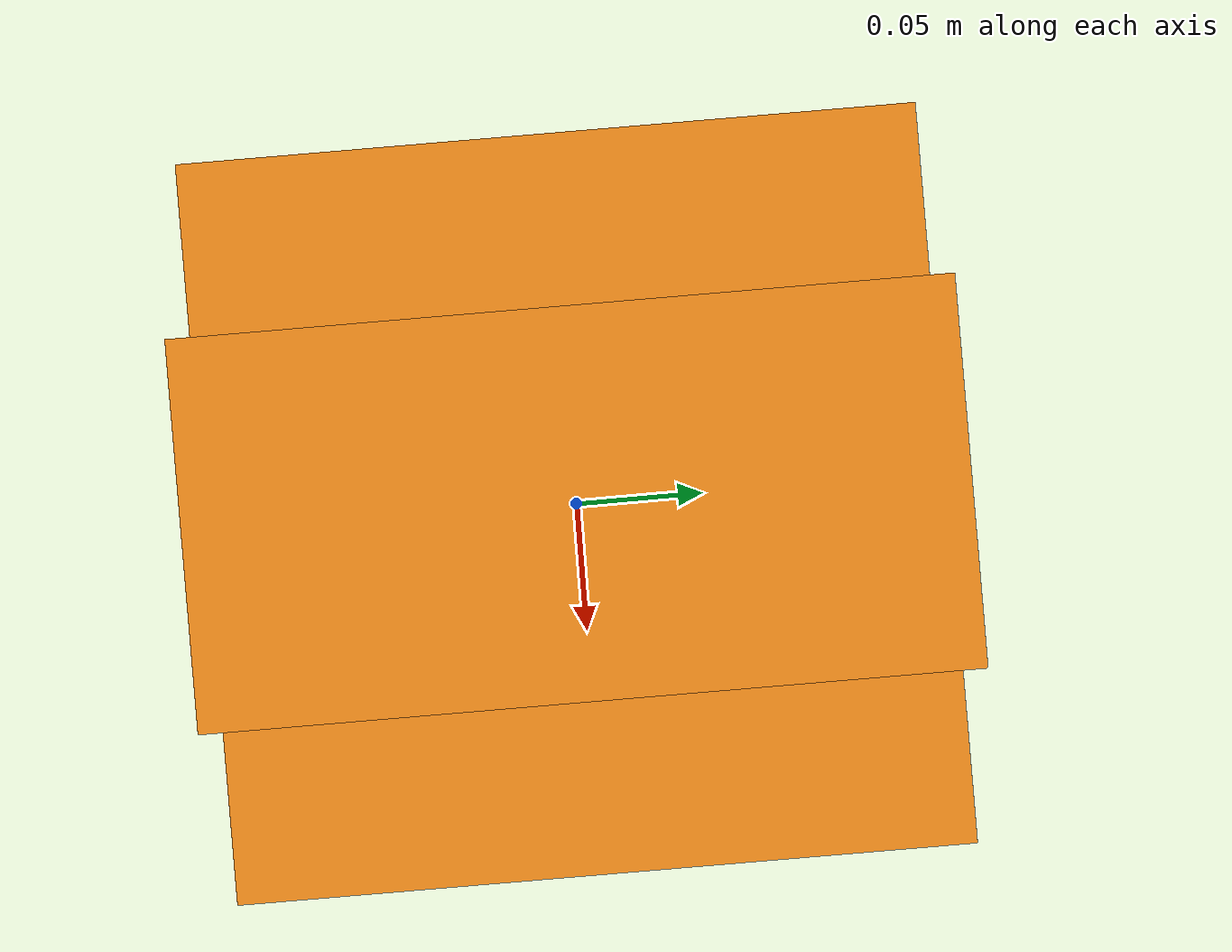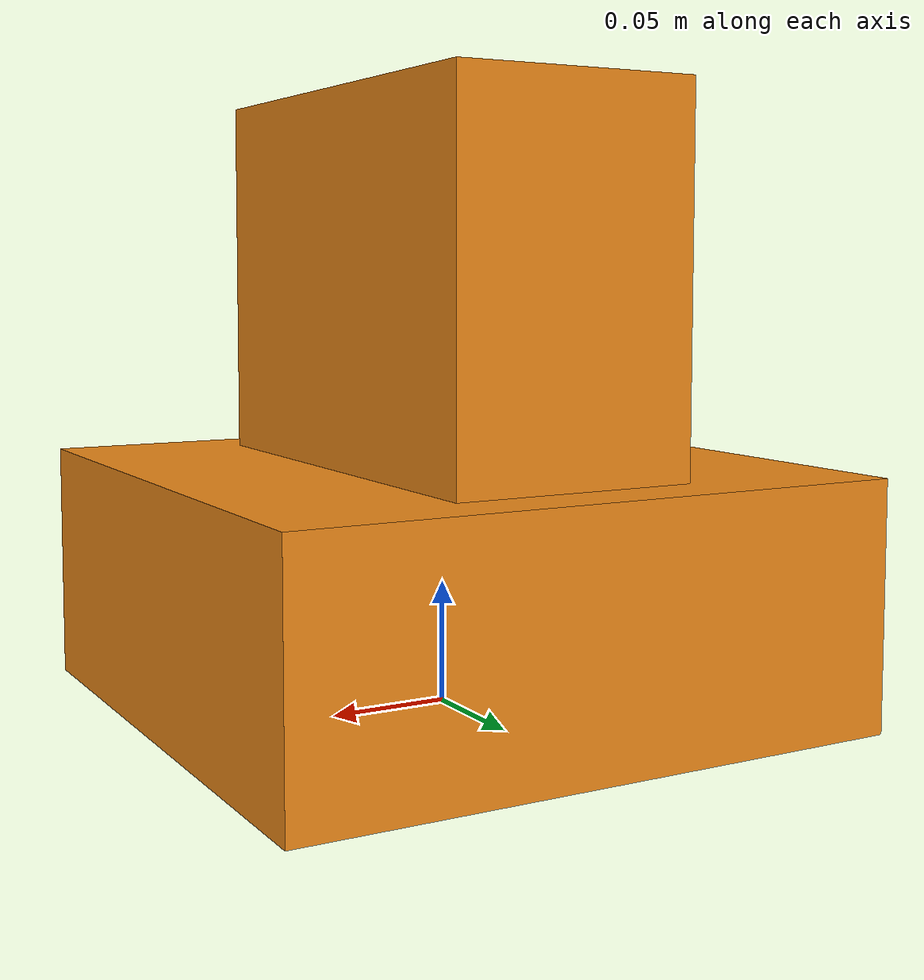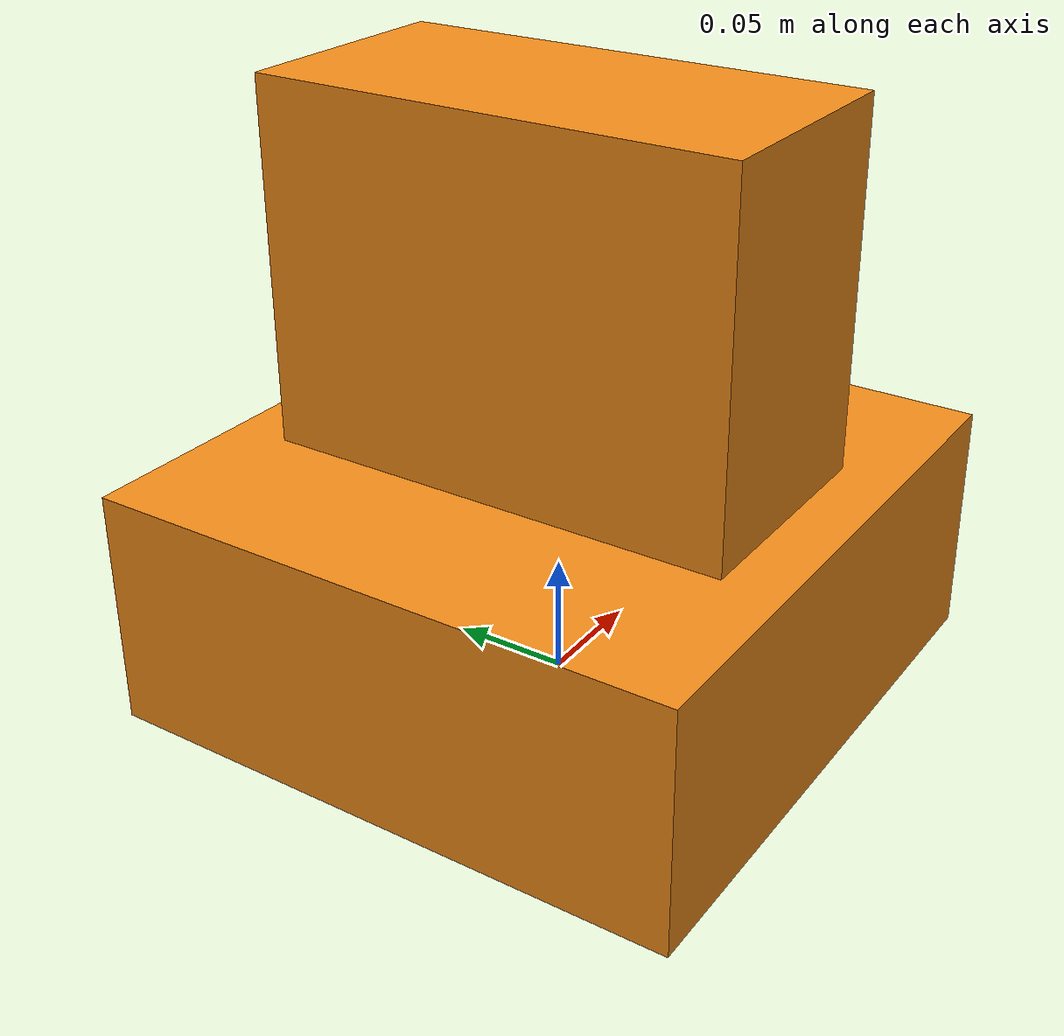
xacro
<?xml version="1.0"?>
<robot name="two_arm_gripper" xmlns:xacro="http://ros.org/wiki/xacro">
  <xacro:include filename="$(find hiqp_examples)/urdf/two_arm_gripper_links.xacro"/>
  <xacro:include filename="$(find hiqp_examples)/urdf/two_arm_gripper_joints.xacro"/>

  <xacro:transmissions hardware_interface="$(arg prefix)"/>

  <gazebo>
  <plugin name="gazebo_ros_control" filename="libgazebo_ros_control.so">
    <robotNamespace>/two_arm_gripper</robotNamespace>
  </plugin>
</gazebo>

</robot>

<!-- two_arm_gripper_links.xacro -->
<robot name="two_arm_gripper" xmlns:xacro="http://ros.org/wiki/xacro">

    <link name="world"/>

    <link name="base_link"/>

    <link name="link_body_base">
      <visual>
        <origin xyz="0 0 0" rpy="0 0 0"/>
        <geometry><box size="0.25 0.25 0.1"/></geometry>
        <material name="Orange"/>
      </visual>
      <collision><geometry><box size="0.25 0.25 0.1"/></geometry></collision>
      <inertial>
        <origin xyz="0 0 0" rpy="0 0 0"/>
        <mass value="1"/>
        <inertia ixx="1" ixy="0" ixz="0" iyy="1" iyz="0" izz="1"/>
      </inertial>
    </link>

    <link name="link_body_top">
      <visual>
        <origin xyz="0 0 0" rpy="0 0 0"/>
        <geometry><box size="0.1 0.2 0.2"/></geometry>
        <material name="Orange"/>
      </visual>
      <collision><geometry><box size="0.1 0.2 0.2"/></geometry></collision>
      <inertial>
        <origin xyz="0 0 0" rpy="0 0 0"/>
        <mass value="1"/>
        <inertia ixx="1" ixy="0" ixz="0" iyy="1" iyz="0" izz="1"/>
      </inertial>
    </link>

    <link name="link_left_1">
      <visual>
        <origin xyz="0 0 -0.075" rpy="0 0 0"/>
        <geometry><cylinder radius="0.05" length="0.15"/></geometry>
        <material name="Orange"/>
      </visual>
      <collision>
        <origin xyz="0 0 -0.075" rpy="0 0 0"/>
        <geometry><cylinder radius="0.05" length="0.15"/></geometry>
      </collision>
      <inertial>
        <origin xyz="0 0 0" rpy="0 0 0"/>
        <mass value="1"/>
        <inertia ixx="0.1" ixy="0" ixz="0" iyy="0.1" iyz="0" izz="0.1"/>
      </inertial>
    </link>

</robot>

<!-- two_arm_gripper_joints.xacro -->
<robot name="two_arm_gripper" xmlns:xacro="http://ros.org/wiki/xacro">

  <joint name="joint_world_to_base_link" type="fixed">
    <parent link="world"/>
    <child link="base_link"/>
    <origin xyz="0 0 0"/>
  </joint>

  <joint name="joint_body_base_to_base_link" type="fixed">
    <parent link="base_link"/>
    <child link="link_body_base"/>
    <origin xyz="0 0 0.05" rpy="0 0 0"/>
  </joint>

  <joint name="joint_body_top_to_body_base" type="fixed">
    <parent link="link_body_base"/>
    <child link="link_body_top"/>
    <origin xyz="0 0 0.1" rpy="0 0 0"/>
  </joint>

  <joint name="joint_left1_to_body_top" type="revolute">
    <parent link="link_body_top"/>
    <child link="link_left_1"/>
    <limit effort="1000.0" lower="-1.0" upper="1.0" velocity="2.0"/>
    <axis xyz="1 0 0"/>
    <origin xyz="0 0 0" rpy="0 0 0"/>
  </joint>

  <xacro:macro name="transmissions" params="hardware_interface">
    <transmission name="tm_left1_to_body_top">
      <type>transmission_interface/SimpleTransmission</type>
      <joint name="joint_left1_to_body_top">
        <hardwareInterface>${hardware_interface}</hardwareInterface>
      </joint>
      <actuator name="motor_left1_to_body_top">
        <hardwareInterface>${hardware_interface}</hardwareInterface>
        <mechanicalReduction>1</mechanicalReduction>
      </actuator>
    </transmission>
  </xacro:macro>

</robot>
